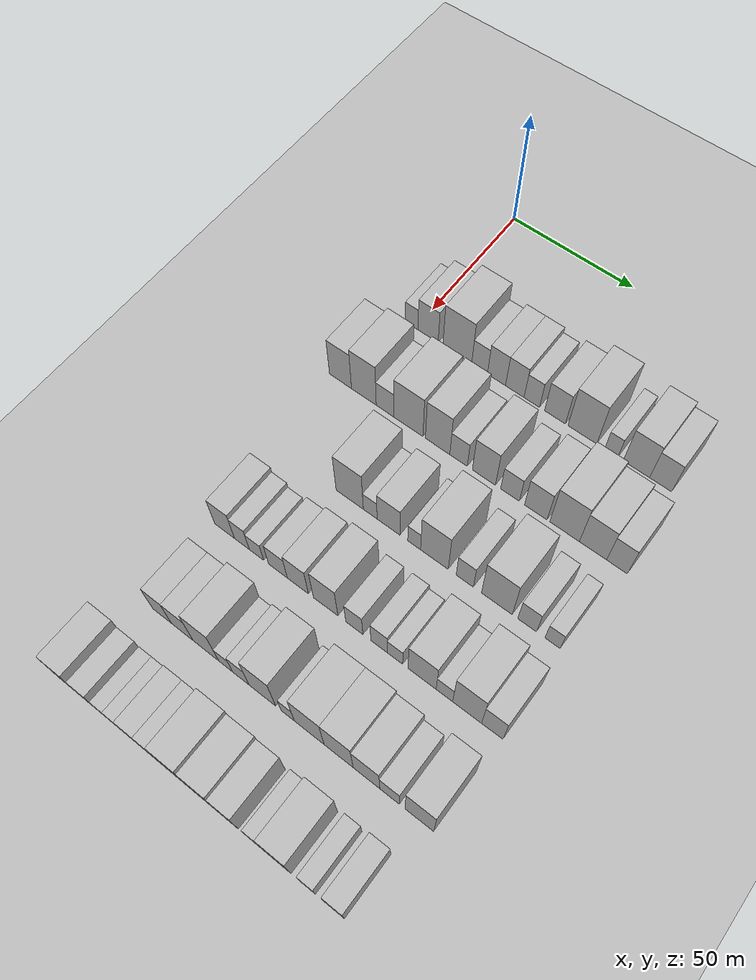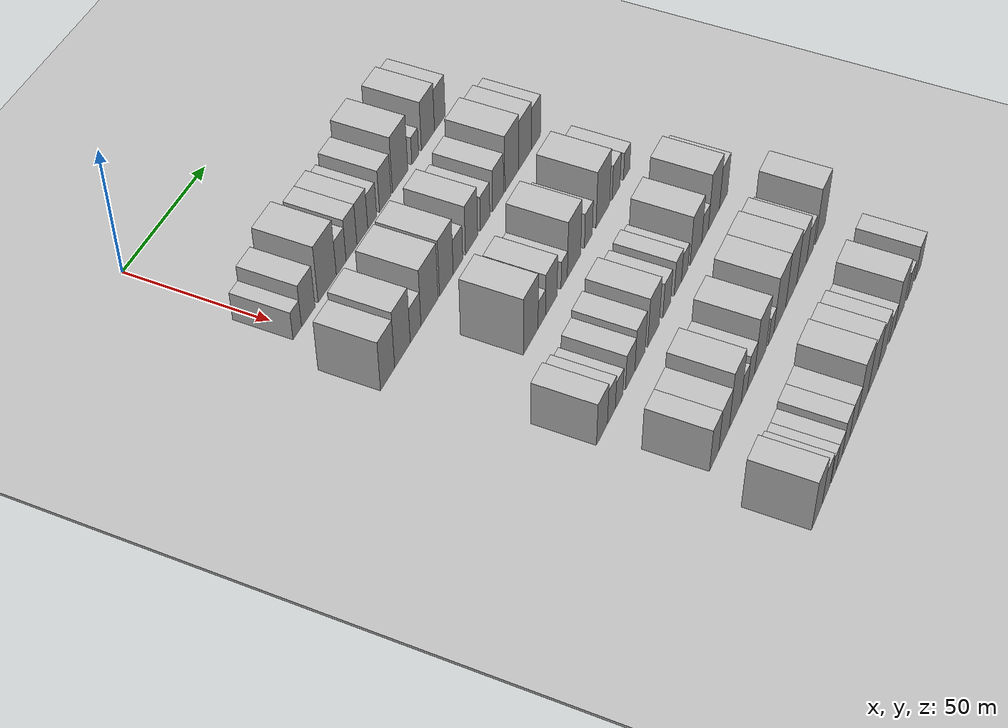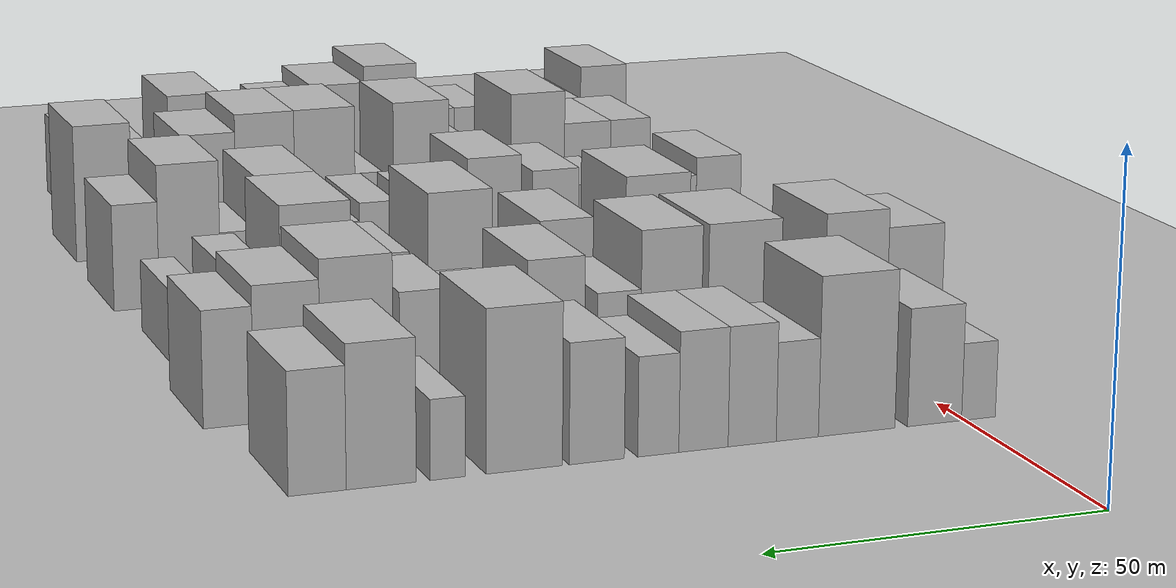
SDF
<sdf version="1.6">
 <world name="default">
  <include><name>ground_plane_1</name><uri>model://HANNAS_ground_plane</uri></include>
  <include>
   <name>ground_plane_2</name>
   <uri>model://HANNAS_ground_plane</uri>
   <pose>100 0 0  0 0 0</pose>
  </include>
  <model name="building_58">
   <static>1</static>
   <pose>50.0000 -1.6064 0 0.000000 0.000000 0.000000</pose>
   <link name="link">
    <pose>0 0 6.00 0 0 0</pose>
    <collision name="collision"><geometry><box><size>20.0000 5.4205 12.0000</size></box></geometry></collision>
    <visual name="visual">
     <cast_shadows>0</cast_shadows>
     <geometry><box><size>20.0000 5.4205 12.0000</size></box></geometry>
     <material>
      <script>
       <uri>model://HANNAS_wall/materials/scripts</uri>
       <uri>model://HANNAS_wall/materials/textures</uri>
       <name>vrc/HANNAS_wall</name>
      </script>
     </material>
    </visual>
   </link>
  </model>
  <model name="building_59">
   <static>1</static>
   <pose>50.0000 5.4025 0 0.000000 0.000000 0.000000</pose>
   <link name="link">
    <pose>0 0 9.00 0 0 0</pose>
    <collision name="collision"><geometry><box><size>20.0000 8.5973 18.0000</size></box></geometry></collision>
    <visual name="visual">
     <cast_shadows>0</cast_shadows>
     <geometry><box><size>20.0000 8.5973 18.0000</size></box></geometry>
     <material>
      <script>
       <uri>model://HANNAS_wall/materials/scripts</uri>
       <uri>model://HANNAS_wall/materials/textures</uri>
       <name>vrc/HANNAS_wall</name>
      </script>
     </material>
    </visual>
   </link>
  </model>
  <model name="building_60">
   <static>1</static>
   <pose>50.0000 17.6853 0 0.000000 0.000000 0.000000</pose>
   <link name="link">
    <pose>0 0 12.00 0 0 0</pose>
    <collision name="collision"><geometry><box><size>20.0000 11.9684 24.0000</size></box></geometry></collision>
    <visual name="visual">
     <cast_shadows>0</cast_shadows>
     <geometry><box><size>20.0000 11.9684 24.0000</size></box></geometry>
     <material>
      <script>
       <uri>model://HANNAS_wall/materials/scripts</uri>
       <uri>model://HANNAS_wall/materials/textures</uri>
       <name>vrc/HANNAS_wall</name>
      </script>
     </material>
    </visual>
   </link>
  </model>
  <model name="building_61">
   <static>1</static>
   <pose>50.0000 26.9206 0 0.000000 0.000000 0.000000</pose>
   <link name="link">
    <pose>0 0 7.50 0 0 0</pose>
    <collision name="collision"><geometry><box><size>20.0000 6.5022 15.0000</size></box></geometry></collision>
    <visual name="visual">
     <cast_shadows>0</cast_shadows>
     <geometry><box><size>20.0000 6.5022 15.0000</size></box></geometry>
     <material>
      <script>
       <uri>model://HANNAS_wall/materials/scripts</uri>
       <uri>model://HANNAS_wall/materials/textures</uri>
       <name>vrc/HANNAS_wall</name>
      </script>
     </material>
    </visual>
   </link>
  </model>
  <model name="building_62">
   <static>1</static>
   <pose>50.0000 33.8525 0 0.000000 0.000000 0.000000</pose>
   <link name="link">
    <pose>0 0 9.00 0 0 0</pose>
    <collision name="collision"><geometry><box><size>20.0000 7.3617 18.0000</size></box></geometry></collision>
    <visual name="visual">
     <cast_shadows>0</cast_shadows>
     <geometry><box><size>20.0000 7.3617 18.0000</size></box></geometry>
     <material>
      <script>
       <uri>model://HANNAS_wall/materials/scripts</uri>
       <uri>model://HANNAS_wall/materials/textures</uri>
       <name>vrc/HANNAS_wall</name>
      </script>
     </material>
    </visual>
   </link>
  </model>
  <model name="building_63">
   <static>1</static>
   <pose>50.0000 41.2627 0 0.000000 0.000000 0.000000</pose>
   <link name="link">
    <pose>0 0 9.00 0 0 0</pose>
    <collision name="collision"><geometry><box><size>20.0000 7.4587 18.0000</size></box></geometry></collision>
    <visual name="visual">
     <cast_shadows>0</cast_shadows>
     <geometry><box><size>20.0000 7.4587 18.0000</size></box></geometry>
     <material>
      <script>
       <uri>model://HANNAS_wall/materials/scripts</uri>
       <uri>model://HANNAS_wall/materials/textures</uri>
       <name>vrc/HANNAS_wall</name>
      </script>
     </material>
    </visual>
   </link>
  </model>
  <model name="building_64">
   <static>1</static>
   <pose>50.0000 48.0713 0 0.000000 0.000000 0.000000</pose>
   <link name="link">
    <pose>0 0 7.50 0 0 0</pose>
    <collision name="collision"><geometry><box><size>20.0000 6.1585 15.0000</size></box></geometry></collision>
    <visual name="visual">
     <cast_shadows>0</cast_shadows>
     <geometry><box><size>20.0000 6.1585 15.0000</size></box></geometry>
     <material>
      <script>
       <uri>model://HANNAS_wall/materials/scripts</uri>
       <uri>model://HANNAS_wall/materials/textures</uri>
       <name>vrc/HANNAS_wall</name>
      </script>
     </material>
    </visual>
   </link>
  </model>
  <model name="building_65">
   <static>1</static>
   <pose>50.0000 57.2252 0 0.000000 0.000000 0.000000</pose>
   <link name="link">
    <pose>0 0 9.00 0 0 0</pose>
    <collision name="collision"><geometry><box><size>20.0000 8.1494 18.0000</size></box></geometry></collision>
    <visual name="visual">
     <cast_shadows>0</cast_shadows>
     <geometry><box><size>20.0000 8.1494 18.0000</size></box></geometry>
     <material>
      <script>
       <uri>model://HANNAS_wall/materials/scripts</uri>
       <uri>model://HANNAS_wall/materials/textures</uri>
       <name>vrc/HANNAS_wall</name>
      </script>
     </material>
    </visual>
   </link>
  </model>
  <model name="building_66">
   <static>1</static>
   <pose>50.0000 67.8666 0 0.000000 0.000000 0.000000</pose>
   <link name="link">
    <pose>0 0 12.00 0 0 0</pose>
    <collision name="collision"><geometry><box><size>20.0000 11.1333 24.0000</size></box></geometry></collision>
    <visual name="visual">
     <cast_shadows>0</cast_shadows>
     <geometry><box><size>20.0000 11.1333 24.0000</size></box></geometry>
     <material>
      <script>
       <uri>model://HANNAS_wall/materials/scripts</uri>
       <uri>model://HANNAS_wall/materials/textures</uri>
       <name>vrc/HANNAS_wall</name>
      </script>
     </material>
    </visual>
   </link>
  </model>
  <model name="building_67">
   <static>1</static>
   <pose>50.0000 78.9440 0 0.000000 0.000000 0.000000</pose>
   <link name="link">
    <pose>0 0 6.00 0 0 0</pose>
    <collision name="collision"><geometry><box><size>20.0000 5.0215 12.0000</size></box></geometry></collision>
    <visual name="visual">
     <cast_shadows>0</cast_shadows>
     <geometry><box><size>20.0000 5.0215 12.0000</size></box></geometry>
     <material>
      <script>
       <uri>model://HANNAS_wall/materials/scripts</uri>
       <uri>model://HANNAS_wall/materials/textures</uri>
       <name>vrc/HANNAS_wall</name>
      </script>
     </material>
    </visual>
   </link>
  </model>
  <model name="building_68">
   <static>1</static>
   <pose>50.0000 88.4028 0 0.000000 0.000000 0.000000</pose>
   <link name="link">
    <pose>0 0 10.50 0 0 0</pose>
    <collision name="collision"><geometry><box><size>20.0000 9.8961 21.0000</size></box></geometry></collision>
    <visual name="visual">
     <cast_shadows>0</cast_shadows>
     <geometry><box><size>20.0000 9.8961 21.0000</size></box></geometry>
     <material>
      <script>
       <uri>model://HANNAS_wall/materials/scripts</uri>
       <uri>model://HANNAS_wall/materials/textures</uri>
       <name>vrc/HANNAS_wall</name>
      </script>
     </material>
    </visual>
   </link>
  </model>
  <model name="building_69">
   <static>1</static>
   <pose>50.0000 97.4115 0 0.000000 0.000000 0.000000</pose>
   <link name="link">
    <pose>0 0 9.00 0 0 0</pose>
    <collision name="collision"><geometry><box><size>20.0000 8.1214 18.0000</size></box></geometry></collision>
    <visual name="visual">
     <cast_shadows>0</cast_shadows>
     <geometry><box><size>20.0000 8.1214 18.0000</size></box></geometry>
     <material>
      <script>
       <uri>model://HANNAS_wall/materials/scripts</uri>
       <uri>model://HANNAS_wall/materials/textures</uri>
       <name>vrc/HANNAS_wall</name>
      </script>
     </material>
    </visual>
   </link>
  </model>
  <model name="building_178">
   <static>1</static>
   <pose>82.0000 -7.0828 0 0.000000 0.000000 0.000000</pose>
   <link name="link">
    <pose>0 0 10.50 0 0 0</pose>
    <collision name="collision"><geometry><box><size>20.0000 9.3444 21.0000</size></box></geometry></collision>
    <visual name="visual">
     <cast_shadows>0</cast_shadows>
     <geometry><box><size>20.0000 9.3444 21.0000</size></box></geometry>
     <material>
      <script>
       <uri>model://HANNAS_wall/materials/scripts</uri>
       <uri>model://HANNAS_wall/materials/textures</uri>
       <name>vrc/HANNAS_wall</name>
      </script>
     </material>
    </visual>
   </link>
  </model>
  <model name="building_179">
   <static>1</static>
   <pose>82.0000 2.8060 0 0.000000 0.000000 0.000000</pose>
   <link name="link">
    <pose>0 0 12.00 0 0 0</pose>
    <collision name="collision"><geometry><box><size>20.0000 10.4334 24.0000</size></box></geometry></collision>
    <visual name="visual">
     <cast_shadows>0</cast_shadows>
     <geometry><box><size>20.0000 10.4334 24.0000</size></box></geometry>
     <material>
      <script>
       <uri>model://HANNAS_wall/materials/scripts</uri>
       <uri>model://HANNAS_wall/materials/textures</uri>
       <name>vrc/HANNAS_wall</name>
      </script>
     </material>
    </visual>
   </link>
  </model>
  <model name="building_180">
   <static>1</static>
   <pose>82.0000 11.6695 0 0.000000 0.000000 0.000000</pose>
   <link name="link">
    <pose>0 0 7.50 0 0 0</pose>
    <collision name="collision"><geometry><box><size>20.0000 7.2935 15.0000</size></box></geometry></collision>
    <visual name="visual">
     <cast_shadows>0</cast_shadows>
     <geometry><box><size>20.0000 7.2935 15.0000</size></box></geometry>
     <material>
      <script>
       <uri>model://HANNAS_wall/materials/scripts</uri>
       <uri>model://HANNAS_wall/materials/textures</uri>
       <name>vrc/HANNAS_wall</name>
      </script>
     </material>
    </visual>
   </link>
  </model>
  <model name="building_181">
   <static>1</static>
   <pose>82.0000 21.2624 0 0.000000 0.000000 0.000000</pose>
   <link name="link">
    <pose>0 0 12.00 0 0 0</pose>
    <collision name="collision"><geometry><box><size>20.0000 11.8923 24.0000</size></box></geometry></collision>
    <visual name="visual">
     <cast_shadows>0</cast_shadows>
     <geometry><box><size>20.0000 11.8923 24.0000</size></box></geometry>
     <material>
      <script>
       <uri>model://HANNAS_wall/materials/scripts</uri>
       <uri>model://HANNAS_wall/materials/textures</uri>
       <name>vrc/HANNAS_wall</name>
      </script>
     </material>
    </visual>
   </link>
  </model>
  <model name="building_182">
   <static>1</static>
   <pose>82.0000 33.1032 0 0.000000 0.000000 0.000000</pose>
   <link name="link">
    <pose>0 0 12.00 0 0 0</pose>
    <collision name="collision"><geometry><box><size>20.0000 9.7894 24.0000</size></box></geometry></collision>
    <visual name="visual">
     <cast_shadows>0</cast_shadows>
     <geometry><box><size>20.0000 9.7894 24.0000</size></box></geometry>
     <material>
      <script>
       <uri>model://HANNAS_wall/materials/scripts</uri>
       <uri>model://HANNAS_wall/materials/textures</uri>
       <name>vrc/HANNAS_wall</name>
      </script>
     </material>
    </visual>
   </link>
  </model>
  <model name="building_183">
   <static>1</static>
   <pose>82.0000 41.4541 0 0.000000 0.000000 0.000000</pose>
   <link name="link">
    <pose>0 0 7.50 0 0 0</pose>
    <collision name="collision"><geometry><box><size>20.0000 6.9124 15.0000</size></box></geometry></collision>
    <visual name="visual">
     <cast_shadows>0</cast_shadows>
     <geometry><box><size>20.0000 6.9124 15.0000</size></box></geometry>
     <material>
      <script>
       <uri>model://HANNAS_wall/materials/scripts</uri>
       <uri>model://HANNAS_wall/materials/textures</uri>
       <name>vrc/HANNAS_wall</name>
      </script>
     </material>
    </visual>
   </link>
  </model>
  <model name="building_184">
   <static>1</static>
   <pose>82.0000 51.4165 0 0.000000 0.000000 0.000000</pose>
   <link name="link">
    <pose>0 0 10.50 0 0 0</pose>
    <collision name="collision"><geometry><box><size>20.0000 9.0125 21.0000</size></box></geometry></collision>
    <visual name="visual">
     <cast_shadows>0</cast_shadows>
     <geometry><box><size>20.0000 9.0125 21.0000</size></box></geometry>
     <material>
      <script>
       <uri>model://HANNAS_wall/materials/scripts</uri>
       <uri>model://HANNAS_wall/materials/textures</uri>
       <name>vrc/HANNAS_wall</name>
      </script>
     </material>
    </visual>
   </link>
  </model>
  <model name="building_185">
   <static>1</static>
   <pose>82.0000 61.5110 0 0.000000 0.000000 0.000000</pose>
   <link name="link">
    <pose>0 0 7.50 0 0 0</pose>
    <collision name="collision"><geometry><box><size>20.0000 7.1763 15.0000</size></box></geometry></collision>
    <visual name="visual">
     <cast_shadows>0</cast_shadows>
     <geometry><box><size>20.0000 7.1763 15.0000</size></box></geometry>
     <material>
      <script>
       <uri>model://HANNAS_wall/materials/scripts</uri>
       <uri>model://HANNAS_wall/materials/textures</uri>
       <name>vrc/HANNAS_wall</name>
      </script>
     </material>
    </visual>
   </link>
  </model>
  <model name="building_186">
   <static>1</static>
   <pose>82.0000 71.3498 0 0.000000 0.000000 0.000000</pose>
   <link name="link">
    <pose>0 0 9.00 0 0 0</pose>
    <collision name="collision"><geometry><box><size>20.0000 8.5014 18.0000</size></box></geometry></collision>
    <visual name="visual">
     <cast_shadows>0</cast_shadows>
     <geometry><box><size>20.0000 8.5014 18.0000</size></box></geometry>
     <material>
      <script>
       <uri>model://HANNAS_wall/materials/scripts</uri>
       <uri>model://HANNAS_wall/materials/textures</uri>
       <name>vrc/HANNAS_wall</name>
      </script>
     </material>
    </visual>
   </link>
  </model>
  <model name="building_187">
   <static>1</static>
   <pose>82.0000 82.1082 0 0.000000 0.000000 0.000000</pose>
   <link name="link">
    <pose>0 0 12.00 0 0 0</pose>
    <collision name="collision"><geometry><box><size>20.0000 11.0153 24.0000</size></box></geometry></collision>
    <visual name="visual">
     <cast_shadows>0</cast_shadows>
     <geometry><box><size>20.0000 11.0153 24.0000</size></box></geometry>
     <material>
      <script>
       <uri>model://HANNAS_wall/materials/scripts</uri>
       <uri>model://HANNAS_wall/materials/textures</uri>
       <name>vrc/HANNAS_wall</name>
      </script>
     </material>
    </visual>
   </link>
  </model>
  <model name="building_188">
   <static>1</static>
   <pose>82.0000 92.6008 0 0.000000 0.000000 0.000000</pose>
   <link name="link">
    <pose>0 0 10.50 0 0 0</pose>
    <collision name="collision"><geometry><box><size>20.0000 9.9699 21.0000</size></box></geometry></collision>
    <visual name="visual">
     <cast_shadows>0</cast_shadows>
     <geometry><box><size>20.0000 9.9699 21.0000</size></box></geometry>
     <material>
      <script>
       <uri>model://HANNAS_wall/materials/scripts</uri>
       <uri>model://HANNAS_wall/materials/textures</uri>
       <name>vrc/HANNAS_wall</name>
      </script>
     </material>
    </visual>
   </link>
  </model>
  <model name="building_189">
   <static>1</static>
   <pose>82.0000 101.2985 0 0.000000 0.000000 0.000000</pose>
   <link name="link">
    <pose>0 0 9.00 0 0 0</pose>
    <collision name="collision"><geometry><box><size>20.0000 7.4254 18.0000</size></box></geometry></collision>
    <visual name="visual">
     <cast_shadows>0</cast_shadows>
     <geometry><box><size>20.0000 7.4254 18.0000</size></box></geometry>
     <material>
      <script>
       <uri>model://HANNAS_wall/materials/scripts</uri>
       <uri>model://HANNAS_wall/materials/textures</uri>
       <name>vrc/HANNAS_wall</name>
      </script>
     </material>
    </visual>
   </link>
  </model>
  <model name="building_297">
   <static>1</static>
   <pose>114.0000 22.3633 0 0.000000 0.000000 0.000000</pose>
   <link name="link">
    <pose>0 0 12.00 0 0 0</pose>
    <collision name="collision"><geometry><box><size>20.0000 10.9791 24.0000</size></box></geometry></collision>
    <visual name="visual">
     <cast_shadows>0</cast_shadows>
     <geometry><box><size>20.0000 10.9791 24.0000</size></box></geometry>
     <material>
      <script>
       <uri>model://HANNAS_wall/materials/scripts</uri>
       <uri>model://HANNAS_wall/materials/textures</uri>
       <name>vrc/HANNAS_wall</name>
      </script>
     </material>
    </visual>
   </link>
  </model>
  <model name="building_298">
   <static>1</static>
   <pose>114.0000 30.6021 0 0.000000 0.000000 0.000000</pose>
   <link name="link">
    <pose>0 0 6.00 0 0 0</pose>
    <collision name="collision"><geometry><box><size>20.0000 5.4985 12.0000</size></box></geometry></collision>
    <visual name="visual">
     <cast_shadows>0</cast_shadows>
     <geometry><box><size>20.0000 5.4985 12.0000</size></box></geometry>
     <material>
      <script>
       <uri>model://HANNAS_wall/materials/scripts</uri>
       <uri>model://HANNAS_wall/materials/textures</uri>
       <name>vrc/HANNAS_wall</name>
      </script>
     </material>
    </visual>
   </link>
  </model>
  <model name="building_299">
   <static>1</static>
   <pose>114.0000 37.8193 0 0.000000 0.000000 0.000000</pose>
   <link name="link">
    <pose>0 0 9.00 0 0 0</pose>
    <collision name="collision"><geometry><box><size>20.0000 8.9359 18.0000</size></box></geometry></collision>
    <visual name="visual">
     <cast_shadows>0</cast_shadows>
     <geometry><box><size>20.0000 8.9359 18.0000</size></box></geometry>
     <material>
      <script>
       <uri>model://HANNAS_wall/materials/scripts</uri>
       <uri>model://HANNAS_wall/materials/textures</uri>
       <name>vrc/HANNAS_wall</name>
      </script>
     </material>
    </visual>
   </link>
  </model>
  <model name="building_300">
   <static>1</static>
   <pose>114.0000 47.7660 0 0.000000 0.000000 0.000000</pose>
   <link name="link">
    <pose>0 0 6.00 0 0 0</pose>
    <collision name="collision"><geometry><box><size>20.0000 4.9575 12.0000</size></box></geometry></collision>
    <visual name="visual">
     <cast_shadows>0</cast_shadows>
     <geometry><box><size>20.0000 4.9575 12.0000</size></box></geometry>
     <material>
      <script>
       <uri>model://HANNAS_wall/materials/scripts</uri>
       <uri>model://HANNAS_wall/materials/textures</uri>
       <name>vrc/HANNAS_wall</name>
      </script>
     </material>
    </visual>
   </link>
  </model>
  <model name="building_301">
   <static>1</static>
   <pose>114.0000 55.5227 0 0.000000 0.000000 0.000000</pose>
   <link name="link">
    <pose>0 0 12.00 0 0 0</pose>
    <collision name="collision"><geometry><box><size>20.0000 10.5559 24.0000</size></box></geometry></collision>
    <visual name="visual">
     <cast_shadows>0</cast_shadows>
     <geometry><box><size>20.0000 10.5559 24.0000</size></box></geometry>
     <material>
      <script>
       <uri>model://HANNAS_wall/materials/scripts</uri>
       <uri>model://HANNAS_wall/materials/textures</uri>
       <name>vrc/HANNAS_wall</name>
      </script>
     </material>
    </visual>
   </link>
  </model>
  <model name="building_302">
   <static>1</static>
   <pose>114.0000 67.0223 0 0.000000 0.000000 0.000000</pose>
   <link name="link">
    <pose>0 0 7.50 0 0 0</pose>
    <collision name="collision"><geometry><box><size>20.0000 6.4432 15.0000</size></box></geometry></collision>
    <visual name="visual">
     <cast_shadows>0</cast_shadows>
     <geometry><box><size>20.0000 6.4432 15.0000</size></box></geometry>
     <material>
      <script>
       <uri>model://HANNAS_wall/materials/scripts</uri>
       <uri>model://HANNAS_wall/materials/textures</uri>
       <name>vrc/HANNAS_wall</name>
      </script>
     </material>
    </visual>
   </link>
  </model>
  <model name="building_303">
   <static>1</static>
   <pose>114.0000 78.9023 0 0.000000 0.000000 0.000000</pose>
   <link name="link">
    <pose>0 0 12.00 0 0 0</pose>
    <collision name="collision"><geometry><box><size>20.0000 11.3169 24.0000</size></box></geometry></collision>
    <visual name="visual">
     <cast_shadows>0</cast_shadows>
     <geometry><box><size>20.0000 11.3169 24.0000</size></box></geometry>
     <material>
      <script>
       <uri>model://HANNAS_wall/materials/scripts</uri>
       <uri>model://HANNAS_wall/materials/textures</uri>
       <name>vrc/HANNAS_wall</name>
      </script>
     </material>
    </visual>
   </link>
  </model>
  <model name="building_304">
   <static>1</static>
   <pose>114.0000 89.9402 0 0.000000 0.000000 0.000000</pose>
   <link name="link">
    <pose>0 0 7.50 0 0 0</pose>
    <collision name="collision"><geometry><box><size>20.0000 6.7590 15.0000</size></box></geometry></collision>
    <visual name="visual">
     <cast_shadows>0</cast_shadows>
     <geometry><box><size>20.0000 6.7590 15.0000</size></box></geometry>
     <material>
      <script>
       <uri>model://HANNAS_wall/materials/scripts</uri>
       <uri>model://HANNAS_wall/materials/textures</uri>
       <name>vrc/HANNAS_wall</name>
      </script>
     </material>
    </visual>
   </link>
  </model>
  <model name="building_305">
   <static>1</static>
   <pose>114.0000 99.0251 0 0.000000 0.000000 0.000000</pose>
   <link name="link">
    <pose>0 0 6.00 0 0 0</pose>
    <collision name="collision"><geometry><box><size>20.0000 5.4108 12.0000</size></box></geometry></collision>
    <visual name="visual">
     <cast_shadows>0</cast_shadows>
     <geometry><box><size>20.0000 5.4108 12.0000</size></box></geometry>
     <material>
      <script>
       <uri>model://HANNAS_wall/materials/scripts</uri>
       <uri>model://HANNAS_wall/materials/textures</uri>
       <name>vrc/HANNAS_wall</name>
      </script>
     </material>
    </visual>
   </link>
  </model>
  <model name="building_415">
   <static>1</static>
   <pose>146.0000 -1.7632 0 0.000000 0.000000 0.000000</pose>
   <link name="link">
    <pose>0 0 9.00 0 0 0</pose>
    <collision name="collision"><geometry><box><size>20.0000 8.2153 18.0000</size></box></geometry></collision>
    <visual name="visual">
     <cast_shadows>0</cast_shadows>
     <geometry><box><size>20.0000 8.2153 18.0000</size></box></geometry>
     <material>
      <script>
       <uri>model://HANNAS_wall/materials/scripts</uri>
       <uri>model://HANNAS_wall/materials/textures</uri>
       <name>vrc/HANNAS_wall</name>
      </script>
     </material>
    </visual>
   </link>
  </model>
  <model name="building_416">
   <static>1</static>
   <pose>146.0000 5.3659 0 0.000000 0.000000 0.000000</pose>
   <link name="link">
    <pose>0 0 7.50 0 0 0</pose>
    <collision name="collision"><geometry><box><size>20.0000 6.0428 15.0000</size></box></geometry></collision>
    <visual name="visual">
     <cast_shadows>0</cast_shadows>
     <geometry><box><size>20.0000 6.0428 15.0000</size></box></geometry>
     <material>
      <script>
       <uri>model://HANNAS_wall/materials/scripts</uri>
       <uri>model://HANNAS_wall/materials/textures</uri>
       <name>vrc/HANNAS_wall</name>
      </script>
     </material>
    </visual>
   </link>
  </model>
  <model name="building_417">
   <static>1</static>
   <pose>146.0000 11.2768 0 0.000000 0.000000 0.000000</pose>
   <link name="link">
    <pose>0 0 6.00 0 0 0</pose>
    <collision name="collision"><geometry><box><size>20.0000 5.7791 12.0000</size></box></geometry></collision>
    <visual name="visual">
     <cast_shadows>0</cast_shadows>
     <geometry><box><size>20.0000 5.7791 12.0000</size></box></geometry>
     <material>
      <script>
       <uri>model://HANNAS_wall/materials/scripts</uri>
       <uri>model://HANNAS_wall/materials/textures</uri>
       <name>vrc/HANNAS_wall</name>
      </script>
     </material>
    </visual>
   </link>
  </model>
  <model name="building_418">
   <static>1</static>
   <pose>146.0000 19.9114 0 0.000000 0.000000 0.000000</pose>
   <link name="link">
    <pose>0 0 7.50 0 0 0</pose>
    <collision name="collision"><geometry><box><size>20.0000 7.4900 15.0000</size></box></geometry></collision>
    <visual name="visual">
     <cast_shadows>0</cast_shadows>
     <geometry><box><size>20.0000 7.4900 15.0000</size></box></geometry>
     <material>
      <script>
       <uri>model://HANNAS_wall/materials/scripts</uri>
       <uri>model://HANNAS_wall/materials/textures</uri>
       <name>vrc/HANNAS_wall</name>
      </script>
     </material>
    </visual>
   </link>
  </model>
  <model name="building_419">
   <static>1</static>
   <pose>146.0000 27.7898 0 0.000000 0.000000 0.000000</pose>
   <link name="link">
    <pose>0 0 9.00 0 0 0</pose>
    <collision name="collision"><geometry><box><size>20.0000 8.2668 18.0000</size></box></geometry></collision>
    <visual name="visual">
     <cast_shadows>0</cast_shadows>
     <geometry><box><size>20.0000 8.2668 18.0000</size></box></geometry>
     <material>
      <script>
       <uri>model://HANNAS_wall/materials/scripts</uri>
       <uri>model://HANNAS_wall/materials/textures</uri>
       <name>vrc/HANNAS_wall</name>
      </script>
     </material>
    </visual>
   </link>
  </model>
  <model name="building_420">
   <static>1</static>
   <pose>146.0000 38.6534 0 0.000000 0.000000 0.000000</pose>
   <link name="link">
    <pose>0 0 10.50 0 0 0</pose>
    <collision name="collision"><geometry><box><size>20.0000 9.4604 21.0000</size></box></geometry></collision>
    <visual name="visual">
     <cast_shadows>0</cast_shadows>
     <geometry><box><size>20.0000 9.4604 21.0000</size></box></geometry>
     <material>
      <script>
       <uri>model://HANNAS_wall/materials/scripts</uri>
       <uri>model://HANNAS_wall/materials/textures</uri>
       <name>vrc/HANNAS_wall</name>
      </script>
     </material>
    </visual>
   </link>
  </model>
  <model name="building_421">
   <static>1</static>
   <pose>146.0000 49.6461 0 0.000000 0.000000 0.000000</pose>
   <link name="link">
    <pose>0 0 7.50 0 0 0</pose>
    <collision name="collision"><geometry><box><size>20.0000 6.5250 15.0000</size></box></geometry></collision>
    <visual name="visual">
     <cast_shadows>0</cast_shadows>
     <geometry><box><size>20.0000 6.5250 15.0000</size></box></geometry>
     <material>
      <script>
       <uri>model://HANNAS_wall/materials/scripts</uri>
       <uri>model://HANNAS_wall/materials/textures</uri>
       <name>vrc/HANNAS_wall</name>
      </script>
     </material>
    </visual>
   </link>
  </model>
  <model name="building_422">
   <static>1</static>
   <pose>146.0000 59.0238 0 0.000000 0.000000 0.000000</pose>
   <link name="link">
    <pose>0 0 7.50 0 0 0</pose>
    <collision name="collision"><geometry><box><size>20.0000 6.2305 15.0000</size></box></geometry></collision>
    <visual name="visual">
     <cast_shadows>0</cast_shadows>
     <geometry><box><size>20.0000 6.2305 15.0000</size></box></geometry>
     <material>
      <script>
       <uri>model://HANNAS_wall/materials/scripts</uri>
       <uri>model://HANNAS_wall/materials/textures</uri>
       <name>vrc/HANNAS_wall</name>
      </script>
     </material>
    </visual>
   </link>
  </model>
  <model name="building_423">
   <static>1</static>
   <pose>146.0000 64.9280 0 0.000000 0.000000 0.000000</pose>
   <link name="link">
    <pose>0 0 6.00 0 0 0</pose>
    <collision name="collision"><geometry><box><size>20.0000 5.5779 12.0000</size></box></geometry></collision>
    <visual name="visual">
     <cast_shadows>0</cast_shadows>
     <geometry><box><size>20.0000 5.5779 12.0000</size></box></geometry>
     <material>
      <script>
       <uri>model://HANNAS_wall/materials/scripts</uri>
       <uri>model://HANNAS_wall/materials/textures</uri>
       <name>vrc/HANNAS_wall</name>
      </script>
     </material>
    </visual>
   </link>
  </model>
  <model name="building_424">
   <static>1</static>
   <pose>146.0000 74.8089 0 0.000000 0.000000 0.000000</pose>
   <link name="link">
    <pose>0 0 10.50 0 0 0</pose>
    <collision name="collision"><geometry><box><size>20.0000 10.1840 21.0000</size></box></geometry></collision>
    <visual name="visual">
     <cast_shadows>0</cast_shadows>
     <geometry><box><size>20.0000 10.1840 21.0000</size></box></geometry>
     <material>
      <script>
       <uri>model://HANNAS_wall/materials/scripts</uri>
       <uri>model://HANNAS_wall/materials/textures</uri>
       <name>vrc/HANNAS_wall</name>
      </script>
     </material>
    </visual>
   </link>
  </model>
  <model name="building_425">
   <static>1</static>
   <pose>146.0000 82.8524 0 0.000000 0.000000 0.000000</pose>
   <link name="link">
    <pose>0 0 6.00 0 0 0</pose>
    <collision name="collision"><geometry><box><size>20.0000 5.9029 12.0000</size></box></geometry></collision>
    <visual name="visual">
     <cast_shadows>0</cast_shadows>
     <geometry><box><size>20.0000 5.9029 12.0000</size></box></geometry>
     <material>
      <script>
       <uri>model://HANNAS_wall/materials/scripts</uri>
       <uri>model://HANNAS_wall/materials/textures</uri>
       <name>vrc/HANNAS_wall</name>
      </script>
     </material>
    </visual>
   </link>
  </model>
  <model name="building_426">
   <static>1</static>
   <pose>146.0000 90.9182 0 0.000000 0.000000 0.000000</pose>
   <link name="link">
    <pose>0 0 12.00 0 0 0</pose>
    <collision name="collision"><geometry><box><size>20.0000 10.2288 24.0000</size></box></geometry></collision>
    <visual name="visual">
     <cast_shadows>0</cast_shadows>
     <geometry><box><size>20.0000 10.2288 24.0000</size></box></geometry>
     <material>
      <script>
       <uri>model://HANNAS_wall/materials/scripts</uri>
       <uri>model://HANNAS_wall/materials/textures</uri>
       <name>vrc/HANNAS_wall</name>
      </script>
     </material>
    </visual>
   </link>
  </model>
  <model name="building_427">
   <static>1</static>
   <pose>146.0000 99.7624 0 0.000000 0.000000 0.000000</pose>
   <link name="link">
    <pose>0 0 9.00 0 0 0</pose>
    <collision name="collision"><geometry><box><size>20.0000 7.4596 18.0000</size></box></geometry></collision>
    <visual name="visual">
     <cast_shadows>0</cast_shadows>
     <geometry><box><size>20.0000 7.4596 18.0000</size></box></geometry>
     <material>
      <script>
       <uri>model://HANNAS_wall/materials/scripts</uri>
       <uri>model://HANNAS_wall/materials/textures</uri>
       <name>vrc/HANNAS_wall</name>
      </script>
     </material>
    </visual>
   </link>
  </model>
  <model name="building_535">
   <static>1</static>
   <pose>178.0000 1.7492 0 0.000000 0.000000 0.000000</pose>
   <link name="link">
    <pose>0 0 9.00 0 0 0</pose>
    <collision name="collision"><geometry><box><size>20.0000 7.6137 18.0000</size></box></geometry></collision>
    <visual name="visual">
     <cast_shadows>0</cast_shadows>
     <geometry><box><size>20.0000 7.6137 18.0000</size></box></geometry>
     <material>
      <script>
       <uri>model://HANNAS_wall/materials/scripts</uri>
       <uri>model://HANNAS_wall/materials/textures</uri>
       <name>vrc/HANNAS_wall</name>
      </script>
     </material>
    </visual>
   </link>
  </model>
  <model name="building_536">
   <static>1</static>
   <pose>178.0000 9.9342 0 0.000000 0.000000 0.000000</pose>
   <link name="link">
    <pose>0 0 9.00 0 0 0</pose>
    <collision name="collision"><geometry><box><size>20.0000 8.7564 18.0000</size></box></geometry></collision>
    <visual name="visual">
     <cast_shadows>0</cast_shadows>
     <geometry><box><size>20.0000 8.7564 18.0000</size></box></geometry>
     <material>
      <script>
       <uri>model://HANNAS_wall/materials/scripts</uri>
       <uri>model://HANNAS_wall/materials/textures</uri>
       <name>vrc/HANNAS_wall</name>
      </script>
     </material>
    </visual>
   </link>
  </model>
  <model name="building_537">
   <static>1</static>
   <pose>178.0000 19.3404 0 0.000000 0.000000 0.000000</pose>
   <link name="link">
    <pose>0 0 12.00 0 0 0</pose>
    <collision name="collision"><geometry><box><size>20.0000 10.0559 24.0000</size></box></geometry></collision>
    <visual name="visual">
     <cast_shadows>0</cast_shadows>
     <geometry><box><size>20.0000 10.0559 24.0000</size></box></geometry>
     <material>
      <script>
       <uri>model://HANNAS_wall/materials/scripts</uri>
       <uri>model://HANNAS_wall/materials/textures</uri>
       <name>vrc/HANNAS_wall</name>
      </script>
     </material>
    </visual>
   </link>
  </model>
  <model name="building_538">
   <static>1</static>
   <pose>178.0000 27.0728 0 0.000000 0.000000 0.000000</pose>
   <link name="link">
    <pose>0 0 6.00 0 0 0</pose>
    <collision name="collision"><geometry><box><size>20.0000 5.4088 12.0000</size></box></geometry></collision>
    <visual name="visual">
     <cast_shadows>0</cast_shadows>
     <geometry><box><size>20.0000 5.4088 12.0000</size></box></geometry>
     <material>
      <script>
       <uri>model://HANNAS_wall/materials/scripts</uri>
       <uri>model://HANNAS_wall/materials/textures</uri>
       <name>vrc/HANNAS_wall</name>
      </script>
     </material>
    </visual>
   </link>
  </model>
  <model name="building_539">
   <static>1</static>
   <pose>178.0000 32.9199 0 0.000000 0.000000 0.000000</pose>
   <link name="link">
    <pose>0 0 7.50 0 0 0</pose>
    <collision name="collision"><geometry><box><size>20.0000 6.2854 15.0000</size></box></geometry></collision>
    <visual name="visual">
     <cast_shadows>0</cast_shadows>
     <geometry><box><size>20.0000 6.2854 15.0000</size></box></geometry>
     <material>
      <script>
       <uri>model://HANNAS_wall/materials/scripts</uri>
       <uri>model://HANNAS_wall/materials/textures</uri>
       <name>vrc/HANNAS_wall</name>
      </script>
     </material>
    </visual>
   </link>
  </model>
  <model name="building_540">
   <static>1</static>
   <pose>178.0000 41.1477 0 0.000000 0.000000 0.000000</pose>
   <link name="link">
    <pose>0 0 12.00 0 0 0</pose>
    <collision name="collision"><geometry><box><size>20.0000 10.1703 24.0000</size></box></geometry></collision>
    <visual name="visual">
     <cast_shadows>0</cast_shadows>
     <geometry><box><size>20.0000 10.1703 24.0000</size></box></geometry>
     <material>
      <script>
       <uri>model://HANNAS_wall/materials/scripts</uri>
       <uri>model://HANNAS_wall/materials/textures</uri>
       <name>vrc/HANNAS_wall</name>
      </script>
     </material>
    </visual>
   </link>
  </model>
  <model name="building_541">
   <static>1</static>
   <pose>178.0000 50.7449 0 0.000000 0.000000 0.000000</pose>
   <link name="link">
    <pose>0 0 6.00 0 0 0</pose>
    <collision name="collision"><geometry><box><size>20.0000 5.0241 12.0000</size></box></geometry></collision>
    <visual name="visual">
     <cast_shadows>0</cast_shadows>
     <geometry><box><size>20.0000 5.0241 12.0000</size></box></geometry>
     <material>
      <script>
       <uri>model://HANNAS_wall/materials/scripts</uri>
       <uri>model://HANNAS_wall/materials/textures</uri>
       <name>vrc/HANNAS_wall</name>
      </script>
     </material>
    </visual>
   </link>
  </model>
  <model name="building_542">
   <static>1</static>
   <pose>178.0000 58.7115 0 0.000000 0.000000 0.000000</pose>
   <link name="link">
    <pose>0 0 12.00 0 0 0</pose>
    <collision name="collision"><geometry><box><size>20.0000 10.9092 24.0000</size></box></geometry></collision>
    <visual name="visual">
     <cast_shadows>0</cast_shadows>
     <geometry><box><size>20.0000 10.9092 24.0000</size></box></geometry>
     <material>
      <script>
       <uri>model://HANNAS_wall/materials/scripts</uri>
       <uri>model://HANNAS_wall/materials/textures</uri>
       <name>vrc/HANNAS_wall</name>
      </script>
     </material>
    </visual>
   </link>
  </model>
  <model name="building_543">
   <static>1</static>
   <pose>178.0000 69.4236 0 0.000000 0.000000 0.000000</pose>
   <link name="link">
    <pose>0 0 12.00 0 0 0</pose>
    <collision name="collision"><geometry><box><size>20.0000 10.5151 24.0000</size></box></geometry></collision>
    <visual name="visual">
     <cast_shadows>0</cast_shadows>
     <geometry><box><size>20.0000 10.5151 24.0000</size></box></geometry>
     <material>
      <script>
       <uri>model://HANNAS_wall/materials/scripts</uri>
       <uri>model://HANNAS_wall/materials/textures</uri>
       <name>vrc/HANNAS_wall</name>
      </script>
     </material>
    </visual>
   </link>
  </model>
  <model name="building_544">
   <static>1</static>
   <pose>178.0000 79.4034 0 0.000000 0.000000 0.000000</pose>
   <link name="link">
    <pose>0 0 10.50 0 0 0</pose>
    <collision name="collision"><geometry><box><size>20.0000 9.4445 21.0000</size></box></geometry></collision>
    <visual name="visual">
     <cast_shadows>0</cast_shadows>
     <geometry><box><size>20.0000 9.4445 21.0000</size></box></geometry>
     <material>
      <script>
       <uri>model://HANNAS_wall/materials/scripts</uri>
       <uri>model://HANNAS_wall/materials/textures</uri>
       <name>vrc/HANNAS_wall</name>
      </script>
     </material>
    </visual>
   </link>
  </model>
  <model name="building_545">
   <static>1</static>
   <pose>178.0000 87.5437 0 0.000000 0.000000 0.000000</pose>
   <link name="link">
    <pose>0 0 7.50 0 0 0</pose>
    <collision name="collision"><geometry><box><size>20.0000 6.8361 15.0000</size></box></geometry></collision>
    <visual name="visual">
     <cast_shadows>0</cast_shadows>
     <geometry><box><size>20.0000 6.8361 15.0000</size></box></geometry>
     <material>
      <script>
       <uri>model://HANNAS_wall/materials/scripts</uri>
       <uri>model://HANNAS_wall/materials/textures</uri>
       <name>vrc/HANNAS_wall</name>
      </script>
     </material>
    </visual>
   </link>
  </model>
  <model name="building_546">
   <static>1</static>
   <pose>178.0000 97.8634 0 0.000000 0.000000 0.000000</pose>
   <link name="link">
    <pose>0 0 12.00 0 0 0</pose>
    <collision name="collision"><geometry><box><size>20.0000 9.8032 24.0000</size></box></geometry></collision>
    <visual name="visual">
     <cast_shadows>0</cast_shadows>
     <geometry><box><size>20.0000 9.8032 24.0000</size></box></geometry>
     <material>
      <script>
       <uri>model://HANNAS_wall/materials/scripts</uri>
       <uri>model://HANNAS_wall/materials/textures</uri>
       <name>vrc/HANNAS_wall</name>
      </script>
     </material>
    </visual>
   </link>
  </model>
  <model name="building_649">
   <static>1</static>
   <pose>210.0000 -5.4270 0 0.000000 0.000000 0.000000</pose>
   <link name="link">
    <pose>0 0 10.50 0 0 0</pose>
    <collision name="collision"><geometry><box><size>20.0000 9.1923 21.0000</size></box></geometry></collision>
    <visual name="visual">
     <cast_shadows>0</cast_shadows>
     <geometry><box><size>20.0000 9.1923 21.0000</size></box></geometry>
     <material>
      <script>
       <uri>model://HANNAS_wall/materials/scripts</uri>
       <uri>model://HANNAS_wall/materials/textures</uri>
       <name>vrc/HANNAS_wall</name>
      </script>
     </material>
    </visual>
   </link>
  </model>
  <model name="building_650">
   <static>1</static>
   <pose>210.0000 2.6160 0 0.000000 0.000000 0.000000</pose>
   <link name="link">
    <pose>0 0 7.50 0 0 0</pose>
    <collision name="collision"><geometry><box><size>20.0000 6.8938 15.0000</size></box></geometry></collision>
    <visual name="visual">
     <cast_shadows>0</cast_shadows>
     <geometry><box><size>20.0000 6.8938 15.0000</size></box></geometry>
     <material>
      <script>
       <uri>model://HANNAS_wall/materials/scripts</uri>
       <uri>model://HANNAS_wall/materials/textures</uri>
       <name>vrc/HANNAS_wall</name>
      </script>
     </material>
    </visual>
   </link>
  </model>
  <model name="building_651">
   <static>1</static>
   <pose>210.0000 9.4696 0 0.000000 0.000000 0.000000</pose>
   <link name="link">
    <pose>0 0 6.00 0 0 0</pose>
    <collision name="collision"><geometry><box><size>20.0000 4.8134 12.0000</size></box></geometry></collision>
    <visual name="visual">
     <cast_shadows>0</cast_shadows>
     <geometry><box><size>20.0000 4.8134 12.0000</size></box></geometry>
     <material>
      <script>
       <uri>model://HANNAS_wall/materials/scripts</uri>
       <uri>model://HANNAS_wall/materials/textures</uri>
       <name>vrc/HANNAS_wall</name>
      </script>
     </material>
    </visual>
   </link>
  </model>
  <model name="building_652">
   <static>1</static>
   <pose>210.0000 14.5684 0 0.000000 0.000000 0.000000</pose>
   <link name="link">
    <pose>0 0 6.00 0 0 0</pose>
    <collision name="collision"><geometry><box><size>20.0000 5.3842 12.0000</size></box></geometry></collision>
    <visual name="visual">
     <cast_shadows>0</cast_shadows>
     <geometry><box><size>20.0000 5.3842 12.0000</size></box></geometry>
     <material>
      <script>
       <uri>model://HANNAS_wall/materials/scripts</uri>
       <uri>model://HANNAS_wall/materials/textures</uri>
       <name>vrc/HANNAS_wall</name>
      </script>
     </material>
    </visual>
   </link>
  </model>
  <model name="building_653">
   <static>1</static>
   <pose>210.0000 20.7599 0 0.000000 0.000000 0.000000</pose>
   <link name="link">
    <pose>0 0 7.50 0 0 0</pose>
    <collision name="collision"><geometry><box><size>20.0000 6.9988 15.0000</size></box></geometry></collision>
    <visual name="visual">
     <cast_shadows>0</cast_shadows>
     <geometry><box><size>20.0000 6.9988 15.0000</size></box></geometry>
     <material>
      <script>
       <uri>model://HANNAS_wall/materials/scripts</uri>
       <uri>model://HANNAS_wall/materials/textures</uri>
       <name>vrc/HANNAS_wall</name>
      </script>
     </material>
    </visual>
   </link>
  </model>
  <model name="building_654">
   <static>1</static>
   <pose>210.0000 27.9541 0 0.000000 0.000000 0.000000</pose>
   <link name="link">
    <pose>0 0 7.50 0 0 0</pose>
    <collision name="collision"><geometry><box><size>20.0000 7.3895 15.0000</size></box></geometry></collision>
    <visual name="visual">
     <cast_shadows>0</cast_shadows>
     <geometry><box><size>20.0000 7.3895 15.0000</size></box></geometry>
     <material>
      <script>
       <uri>model://HANNAS_wall/materials/scripts</uri>
       <uri>model://HANNAS_wall/materials/textures</uri>
       <name>vrc/HANNAS_wall</name>
      </script>
     </material>
    </visual>
   </link>
  </model>
  <model name="building_655">
   <static>1</static>
   <pose>210.0000 36.7223 0 0.000000 0.000000 0.000000</pose>
   <link name="link">
    <pose>0 0 12.00 0 0 0</pose>
    <collision name="collision"><geometry><box><size>20.0000 10.1469 24.0000</size></box></geometry></collision>
    <visual name="visual">
     <cast_shadows>0</cast_shadows>
     <geometry><box><size>20.0000 10.1469 24.0000</size></box></geometry>
     <material>
      <script>
       <uri>model://HANNAS_wall/materials/scripts</uri>
       <uri>model://HANNAS_wall/materials/textures</uri>
       <name>vrc/HANNAS_wall</name>
      </script>
     </material>
    </visual>
   </link>
  </model>
  <model name="building_656">
   <static>1</static>
   <pose>210.0000 46.7759 0 0.000000 0.000000 0.000000</pose>
   <link name="link">
    <pose>0 0 10.50 0 0 0</pose>
    <collision name="collision"><geometry><box><size>20.0000 9.9604 21.0000</size></box></geometry></collision>
    <visual name="visual">
     <cast_shadows>0</cast_shadows>
     <geometry><box><size>20.0000 9.9604 21.0000</size></box></geometry>
     <material>
      <script>
       <uri>model://HANNAS_wall/materials/scripts</uri>
       <uri>model://HANNAS_wall/materials/textures</uri>
       <name>vrc/HANNAS_wall</name>
      </script>
     </material>
    </visual>
   </link>
  </model>
  <model name="building_657">
   <static>1</static>
   <pose>210.0000 55.8474 0 0.000000 0.000000 0.000000</pose>
   <link name="link">
    <pose>0 0 9.00 0 0 0</pose>
    <collision name="collision"><geometry><box><size>20.0000 8.1826 18.0000</size></box></geometry></collision>
    <visual name="visual">
     <cast_shadows>0</cast_shadows>
     <geometry><box><size>20.0000 8.1826 18.0000</size></box></geometry>
     <material>
      <script>
       <uri>model://HANNAS_wall/materials/scripts</uri>
       <uri>model://HANNAS_wall/materials/textures</uri>
       <name>vrc/HANNAS_wall</name>
      </script>
     </material>
    </visual>
   </link>
  </model>
  <model name="building_658">
   <static>1</static>
   <pose>210.0000 65.8704 0 0.000000 0.000000 0.000000</pose>
   <link name="link">
    <pose>0 0 6.00 0 0 0</pose>
    <collision name="collision"><geometry><box><size>20.0000 5.8635 12.0000</size></box></geometry></collision>
    <visual name="visual">
     <cast_shadows>0</cast_shadows>
     <geometry><box><size>20.0000 5.8635 12.0000</size></box></geometry>
     <material>
      <script>
       <uri>model://HANNAS_wall/materials/scripts</uri>
       <uri>model://HANNAS_wall/materials/textures</uri>
       <name>vrc/HANNAS_wall</name>
      </script>
     </material>
    </visual>
   </link>
  </model>
  <model name="building_659">
   <static>1</static>
   <pose>210.0000 73.7853 0 0.000000 0.000000 0.000000</pose>
   <link name="link">
    <pose>0 0 10.50 0 0 0</pose>
    <collision name="collision"><geometry><box><size>20.0000 9.9664 21.0000</size></box></geometry></collision>
    <visual name="visual">
     <cast_shadows>0</cast_shadows>
     <geometry><box><size>20.0000 9.9664 21.0000</size></box></geometry>
     <material>
      <script>
       <uri>model://HANNAS_wall/materials/scripts</uri>
       <uri>model://HANNAS_wall/materials/textures</uri>
       <name>vrc/HANNAS_wall</name>
      </script>
     </material>
    </visual>
   </link>
  </model>
  <model name="building_660">
   <static>1</static>
   <pose>210.0000 84.5168 0 0.000000 0.000000 0.000000</pose>
   <link name="link">
    <pose>0 0 6.00 0 0 0</pose>
    <collision name="collision"><geometry><box><size>20.0000 5.4964 12.0000</size></box></geometry></collision>
    <visual name="visual">
     <cast_shadows>0</cast_shadows>
     <geometry><box><size>20.0000 5.4964 12.0000</size></box></geometry>
     <material>
      <script>
       <uri>model://HANNAS_wall/materials/scripts</uri>
       <uri>model://HANNAS_wall/materials/textures</uri>
       <name>vrc/HANNAS_wall</name>
      </script>
     </material>
    </visual>
   </link>
  </model>
  <model name="building_661">
   <static>1</static>
   <pose>210.0000 93.7134 0 0.000000 0.000000 0.000000</pose>
   <link name="link">
    <pose>0 0 7.50 0 0 0</pose>
    <collision name="collision"><geometry><box><size>20.0000 6.8969 15.0000</size></box></geometry></collision>
    <visual name="visual">
     <cast_shadows>0</cast_shadows>
     <geometry><box><size>20.0000 6.8969 15.0000</size></box></geometry>
     <material>
      <script>
       <uri>model://HANNAS_wall/materials/scripts</uri>
       <uri>model://HANNAS_wall/materials/textures</uri>
       <name>vrc/HANNAS_wall</name>
      </script>
     </material>
    </visual>
   </link>
  </model>
 </world>
</sdf>
